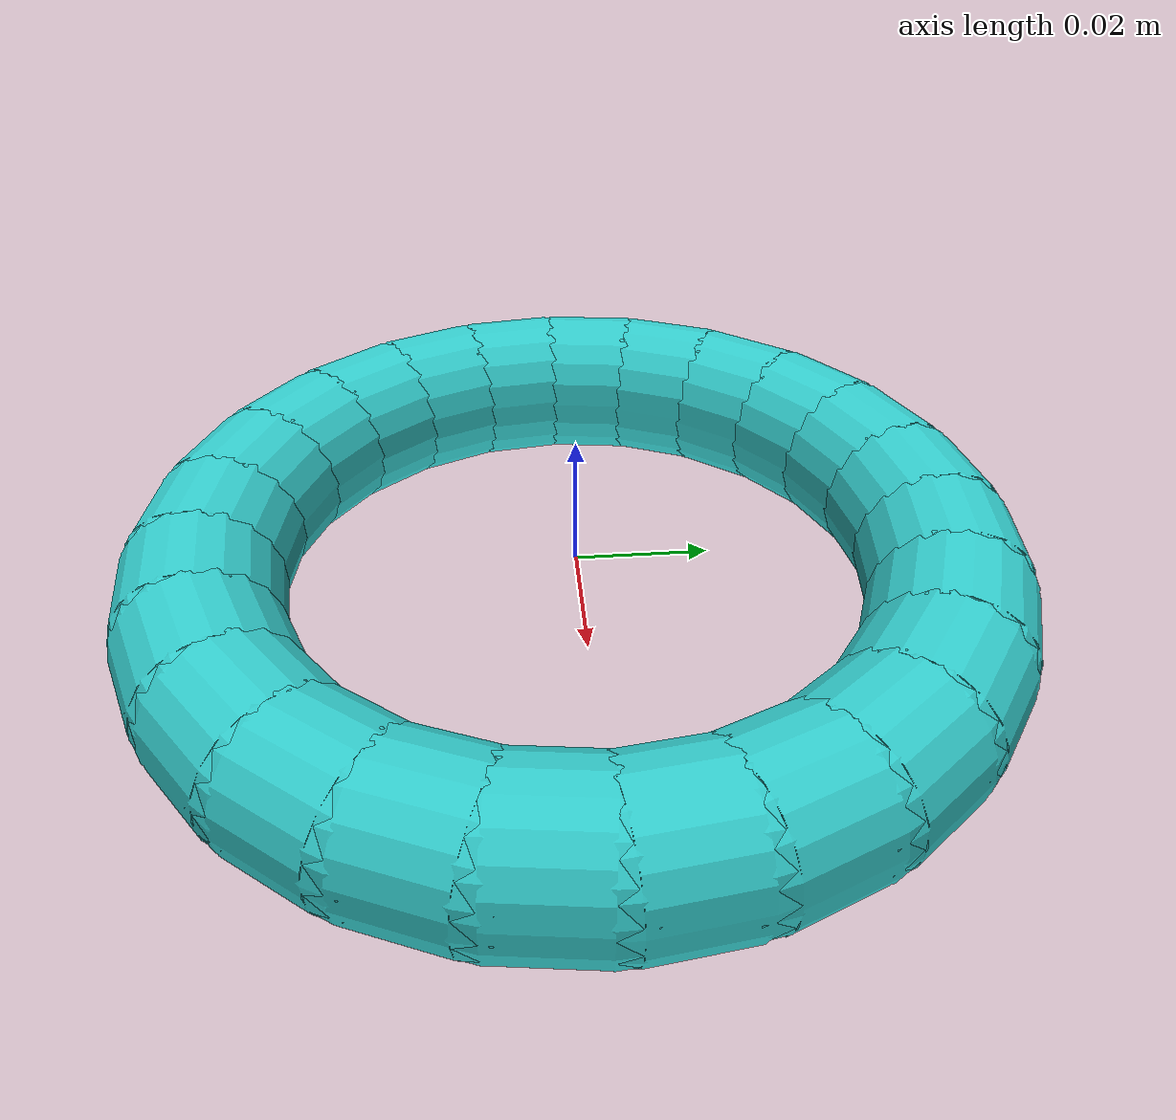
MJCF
<mujoco model="torus_ring_size3">
  <worldbody>
    <body>
      <body name="object">
        <!-- 组合几何体生成圆环 -->
        <geom name="ring_seg_0" type="capsule" fromto="0.055 0.0 0 0.053125920445898756 0.01423504748063864 0" size="0.011" rgba="0.2 0.8 0.8 1" density="50" friction="1.0 0.05 0.05" condim="6" solref="0.001 1" solimp="0.95 0.99 0.001" group="0"/>
        <geom name="ring_seg_vis_0" type="capsule" fromto="0.055 0.0 0 0.053125920445898756 0.01423504748063864 0" size="0.012" rgba="0.2 0.8 0.8 1" contype="0" conaffinity="0" group="1"/>
        <geom name="ring_seg_1" type="capsule" fromto="0.053125920445898756 0.01423504748063864 0 0.047631397208144126 0.027499999999999997 0" size="0.011" rgba="0.2 0.8 0.8 1" density="50" friction="1.0 0.05 0.05" condim="6" solref="0.001 1" solimp="0.95 0.99 0.001" group="0"/>
        <geom name="ring_seg_vis_1" type="capsule" fromto="0.053125920445898756 0.01423504748063864 0 0.047631397208144126 0.027499999999999997 0" size="0.012" rgba="0.2 0.8 0.8 1" contype="0" conaffinity="0" group="1"/>
        <geom name="ring_seg_2" type="capsule" fromto="0.047631397208144126 0.027499999999999997 0 0.038890872965260115 0.03889087296526011 0" size="0.011" rgba="0.2 0.8 0.8 1" density="50" friction="1.0 0.05 0.05" condim="6" solref="0.001 1" solimp="0.95 0.99 0.001" group="0"/>
        <geom name="ring_seg_vis_2" type="capsule" fromto="0.047631397208144126 0.027499999999999997 0 0.038890872965260115 0.03889087296526011 0" size="0.012" rgba="0.2 0.8 0.8 1" contype="0" conaffinity="0" group="1"/>
        <geom name="ring_seg_3" type="capsule" fromto="0.038890872965260115 0.03889087296526011 0 0.027500000000000007 0.047631397208144126 0" size="0.011" rgba="0.2 0.8 0.8 1" density="50" friction="1.0 0.05 0.05" condim="6" solref="0.001 1" solimp="0.95 0.99 0.001" group="0"/>
        <geom name="ring_seg_vis_3" type="capsule" fromto="0.038890872965260115 0.03889087296526011 0 0.027500000000000007 0.047631397208144126 0" size="0.012" rgba="0.2 0.8 0.8 1" contype="0" conaffinity="0" group="1"/>
        <geom name="ring_seg_4" type="capsule" fromto="0.027500000000000007 0.047631397208144126 0 0.01423504748063864 0.053125920445898756 0" size="0.011" rgba="0.2 0.8 0.8 1" density="50" friction="1.0 0.05 0.05" condim="6" solref="0.001 1" solimp="0.95 0.99 0.001" group="0"/>
        <geom name="ring_seg_vis_4" type="capsule" fromto="0.027500000000000007 0.047631397208144126 0 0.01423504748063864 0.053125920445898756 0" size="0.012" rgba="0.2 0.8 0.8 1" contype="0" conaffinity="0" group="1"/>
        <geom name="ring_seg_5" type="capsule" fromto="0.01423504748063864 0.053125920445898756 0 3.367778697655221e-18 0.055 0" size="0.011" rgba="0.2 0.8 0.8 1" density="50" friction="1.0 0.05 0.05" condim="6" solref="0.001 1" solimp="0.95 0.99 0.001" group="0"/>
        <geom name="ring_seg_vis_5" type="capsule" fromto="0.01423504748063864 0.053125920445898756 0 3.367778697655221e-18 0.055 0" size="0.012" rgba="0.2 0.8 0.8 1" contype="0" conaffinity="0" group="1"/>
        <geom name="ring_seg_6" type="capsule" fromto="3.367778697655221e-18 0.055 0 -0.014235047480638635 0.053125920445898756 0" size="0.011" rgba="0.2 0.8 0.8 1" density="50" friction="1.0 0.05 0.05" condim="6" solref="0.001 1" solimp="0.95 0.99 0.001" group="0"/>
        <geom name="ring_seg_vis_6" type="capsule" fromto="3.367778697655221e-18 0.055 0 -0.014235047480638635 0.053125920445898756 0" size="0.012" rgba="0.2 0.8 0.8 1" contype="0" conaffinity="0" group="1"/>
        <geom name="ring_seg_7" type="capsule" fromto="-0.014235047480638635 0.053125920445898756 0 -0.027499999999999986 0.047631397208144126 0" size="0.011" rgba="0.2 0.8 0.8 1" density="50" friction="1.0 0.05 0.05" condim="6" solref="0.001 1" solimp="0.95 0.99 0.001" group="0"/>
        <geom name="ring_seg_vis_7" type="capsule" fromto="-0.014235047480638635 0.053125920445898756 0 -0.027499999999999986 0.047631397208144126 0" size="0.012" rgba="0.2 0.8 0.8 1" contype="0" conaffinity="0" group="1"/>
        <geom name="ring_seg_8" type="capsule" fromto="-0.027499999999999986 0.047631397208144126 0 -0.03889087296526011 0.038890872965260115 0" size="0.011" rgba="0.2 0.8 0.8 1" density="50" friction="1.0 0.05 0.05" condim="6" solref="0.001 1" solimp="0.95 0.99 0.001" group="0"/>
        <geom name="ring_seg_vis_8" type="capsule" fromto="-0.027499999999999986 0.047631397208144126 0 -0.03889087296526011 0.038890872965260115 0" size="0.012" rgba="0.2 0.8 0.8 1" contype="0" conaffinity="0" group="1"/>
        <geom name="ring_seg_9" type="capsule" fromto="-0.03889087296526011 0.038890872965260115 0 -0.047631397208144126 0.027499999999999997 0" size="0.011" rgba="0.2 0.8 0.8 1" density="50" friction="1.0 0.05 0.05" condim="6" solref="0.001 1" solimp="0.95 0.99 0.001" group="0"/>
        <geom name="ring_seg_vis_9" type="capsule" fromto="-0.03889087296526011 0.038890872965260115 0 -0.047631397208144126 0.027499999999999997 0" size="0.012" rgba="0.2 0.8 0.8 1" contype="0" conaffinity="0" group="1"/>
        <geom name="ring_seg_10" type="capsule" fromto="-0.047631397208144126 0.027499999999999997 0 -0.05312592044589875 0.014235047480638656 0" size="0.011" rgba="0.2 0.8 0.8 1" density="50" friction="1.0 0.05 0.05" condim="6" solref="0.001 1" solimp="0.95 0.99 0.001" group="0"/>
        <geom name="ring_seg_vis_10" type="capsule" fromto="-0.047631397208144126 0.027499999999999997 0 -0.05312592044589875 0.014235047480638656 0" size="0.012" rgba="0.2 0.8 0.8 1" contype="0" conaffinity="0" group="1"/>
        <geom name="ring_seg_11" type="capsule" fromto="-0.05312592044589875 0.014235047480638656 0 -0.055 6.735557395310442e-18 0" size="0.011" rgba="0.2 0.8 0.8 1" density="50" friction="1.0 0.05 0.05" condim="6" solref="0.001 1" solimp="0.95 0.99 0.001" group="0"/>
        <geom name="ring_seg_vis_11" type="capsule" fromto="-0.05312592044589875 0.014235047480638656 0 -0.055 6.735557395310442e-18 0" size="0.012" rgba="0.2 0.8 0.8 1" contype="0" conaffinity="0" group="1"/>
        <geom name="ring_seg_12" type="capsule" fromto="-0.055 6.735557395310442e-18 0 -0.053125920445898756 -0.014235047480638644 0" size="0.011" rgba="0.2 0.8 0.8 1" density="50" friction="1.0 0.05 0.05" condim="6" solref="0.001 1" solimp="0.95 0.99 0.001" group="0"/>
        <geom name="ring_seg_vis_12" type="capsule" fromto="-0.055 6.735557395310442e-18 0 -0.053125920445898756 -0.014235047480638644 0" size="0.012" rgba="0.2 0.8 0.8 1" contype="0" conaffinity="0" group="1"/>
        <geom name="ring_seg_13" type="capsule" fromto="-0.053125920445898756 -0.014235047480638644 0 -0.04763139720814413 -0.027499999999999986 0" size="0.011" rgba="0.2 0.8 0.8 1" density="50" friction="1.0 0.05 0.05" condim="6" solref="0.001 1" solimp="0.95 0.99 0.001" group="0"/>
        <geom name="ring_seg_vis_13" type="capsule" fromto="-0.053125920445898756 -0.014235047480638644 0 -0.04763139720814413 -0.027499999999999986 0" size="0.012" rgba="0.2 0.8 0.8 1" contype="0" conaffinity="0" group="1"/>
        <geom name="ring_seg_14" type="capsule" fromto="-0.04763139720814413 -0.027499999999999986 0 -0.038890872965260136 -0.038890872965260094 0" size="0.011" rgba="0.2 0.8 0.8 1" density="50" friction="1.0 0.05 0.05" condim="6" solref="0.001 1" solimp="0.95 0.99 0.001" group="0"/>
        <geom name="ring_seg_vis_14" type="capsule" fromto="-0.04763139720814413 -0.027499999999999986 0 -0.038890872965260136 -0.038890872965260094 0" size="0.012" rgba="0.2 0.8 0.8 1" contype="0" conaffinity="0" group="1"/>
        <geom name="ring_seg_15" type="capsule" fromto="-0.038890872965260136 -0.038890872965260094 0 -0.027500000000000024 -0.04763139720814411 0" size="0.011" rgba="0.2 0.8 0.8 1" density="50" friction="1.0 0.05 0.05" condim="6" solref="0.001 1" solimp="0.95 0.99 0.001" group="0"/>
        <geom name="ring_seg_vis_15" type="capsule" fromto="-0.038890872965260136 -0.038890872965260094 0 -0.027500000000000024 -0.04763139720814411 0" size="0.012" rgba="0.2 0.8 0.8 1" contype="0" conaffinity="0" group="1"/>
        <geom name="ring_seg_16" type="capsule" fromto="-0.027500000000000024 -0.04763139720814411 0 -0.014235047480638635 -0.053125920445898756 0" size="0.011" rgba="0.2 0.8 0.8 1" density="50" friction="1.0 0.05 0.05" condim="6" solref="0.001 1" solimp="0.95 0.99 0.001" group="0"/>
        <geom name="ring_seg_vis_16" type="capsule" fromto="-0.027500000000000024 -0.04763139720814411 0 -0.014235047480638635 -0.053125920445898756 0" size="0.012" rgba="0.2 0.8 0.8 1" contype="0" conaffinity="0" group="1"/>
        <geom name="ring_seg_17" type="capsule" fromto="-0.014235047480638635 -0.053125920445898756 0 -1.0103336092965663e-17 -0.055 0" size="0.011" rgba="0.2 0.8 0.8 1" density="50" friction="1.0 0.05 0.05" condim="6" solref="0.001 1" solimp="0.95 0.99 0.001" group="0"/>
        <geom name="ring_seg_vis_17" type="capsule" fromto="-0.014235047480638635 -0.053125920445898756 0 -1.0103336092965663e-17 -0.055 0" size="0.012" rgba="0.2 0.8 0.8 1" contype="0" conaffinity="0" group="1"/>
        <geom name="ring_seg_18" type="capsule" fromto="-1.0103336092965663e-17 -0.055 0 0.014235047480638616 -0.05312592044589876 0" size="0.011" rgba="0.2 0.8 0.8 1" density="50" friction="1.0 0.05 0.05" condim="6" solref="0.001 1" solimp="0.95 0.99 0.001" group="0"/>
        <geom name="ring_seg_vis_18" type="capsule" fromto="-1.0103336092965663e-17 -0.055 0 0.014235047480638616 -0.05312592044589876 0" size="0.012" rgba="0.2 0.8 0.8 1" contype="0" conaffinity="0" group="1"/>
        <geom name="ring_seg_19" type="capsule" fromto="0.014235047480638616 -0.05312592044589876 0 0.027500000000000007 -0.047631397208144126 0" size="0.011" rgba="0.2 0.8 0.8 1" density="50" friction="1.0 0.05 0.05" condim="6" solref="0.001 1" solimp="0.95 0.99 0.001" group="0"/>
        <geom name="ring_seg_vis_19" type="capsule" fromto="0.014235047480638616 -0.05312592044589876 0 0.027500000000000007 -0.047631397208144126 0" size="0.012" rgba="0.2 0.8 0.8 1" contype="0" conaffinity="0" group="1"/>
        <geom name="ring_seg_20" type="capsule" fromto="0.027500000000000007 -0.047631397208144126 0 0.03889087296526011 -0.03889087296526012 0" size="0.011" rgba="0.2 0.8 0.8 1" density="50" friction="1.0 0.05 0.05" condim="6" solref="0.001 1" solimp="0.95 0.99 0.001" group="0"/>
        <geom name="ring_seg_vis_20" type="capsule" fromto="0.027500000000000007 -0.047631397208144126 0 0.03889087296526011 -0.03889087296526012 0" size="0.012" rgba="0.2 0.8 0.8 1" contype="0" conaffinity="0" group="1"/>
        <geom name="ring_seg_21" type="capsule" fromto="0.03889087296526011 -0.03889087296526012 0 0.04763139720814411 -0.027500000000000024 0" size="0.011" rgba="0.2 0.8 0.8 1" density="50" friction="1.0 0.05 0.05" condim="6" solref="0.001 1" solimp="0.95 0.99 0.001" group="0"/>
        <geom name="ring_seg_vis_21" type="capsule" fromto="0.03889087296526011 -0.03889087296526012 0 0.04763139720814411 -0.027500000000000024 0" size="0.012" rgba="0.2 0.8 0.8 1" contype="0" conaffinity="0" group="1"/>
        <geom name="ring_seg_22" type="capsule" fromto="0.04763139720814411 -0.027500000000000024 0 0.05312592044589875 -0.014235047480638686 0" size="0.011" rgba="0.2 0.8 0.8 1" density="50" friction="1.0 0.05 0.05" condim="6" solref="0.001 1" solimp="0.95 0.99 0.001" group="0"/>
        <geom name="ring_seg_vis_22" type="capsule" fromto="0.04763139720814411 -0.027500000000000024 0 0.05312592044589875 -0.014235047480638686 0" size="0.012" rgba="0.2 0.8 0.8 1" contype="0" conaffinity="0" group="1"/>
        <geom name="ring_seg_23" type="capsule" fromto="0.05312592044589875 -0.014235047480638686 0 0.055 0.0 0" size="0.011" rgba="0.2 0.8 0.8 1" density="50" friction="1.0 0.05 0.05" condim="6" solref="0.001 1" solimp="0.95 0.99 0.001" group="0"/>
        <geom name="ring_seg_vis_23" type="capsule" fromto="0.05312592044589875 -0.014235047480638686 0 0.055 0.0 0" size="0.012" rgba="0.2 0.8 0.8 1" contype="0" conaffinity="0" group="1"/>
      </body>
    </body>
  </worldbody>
</mujoco>
